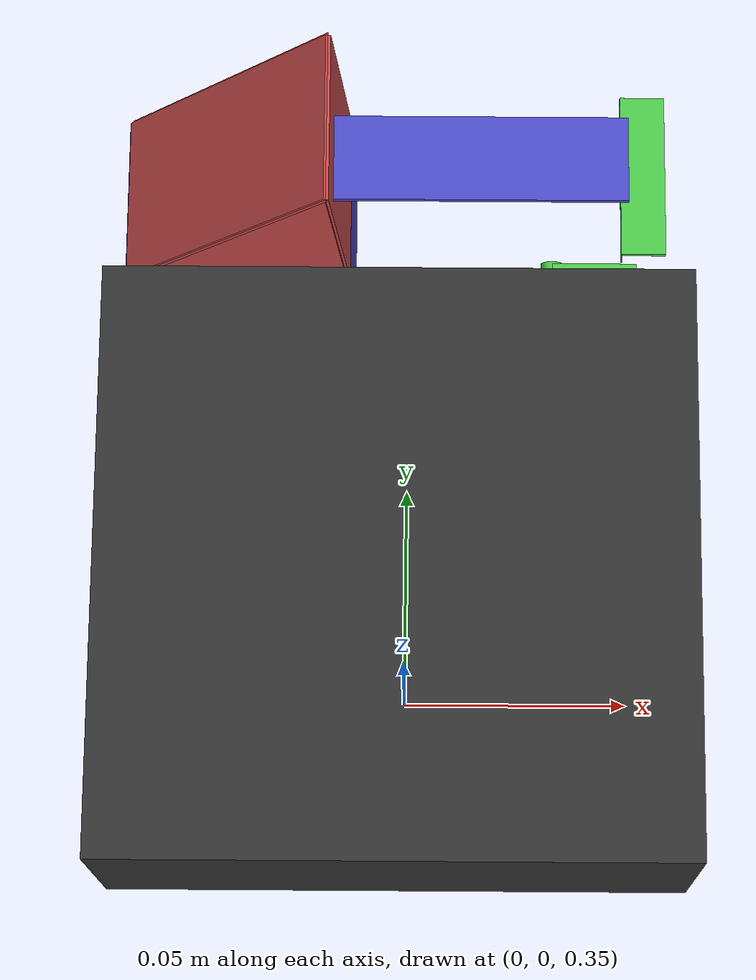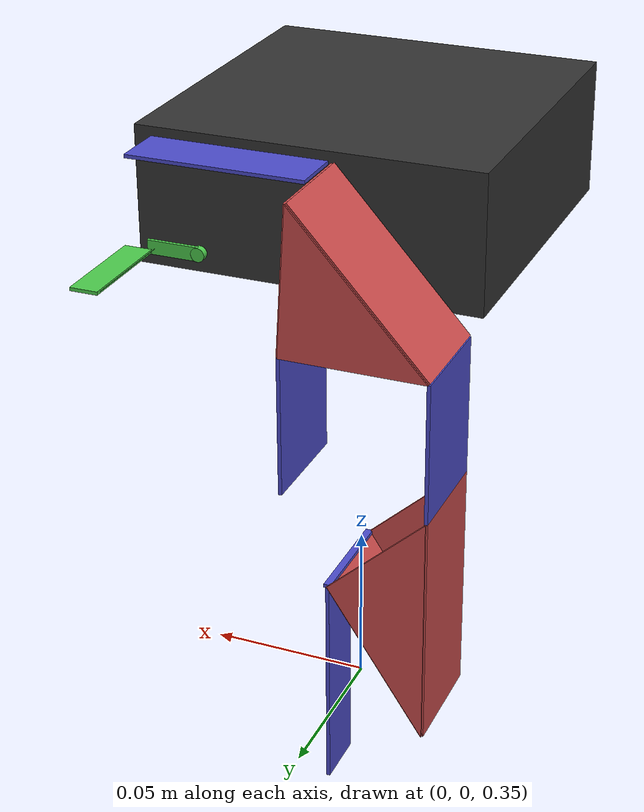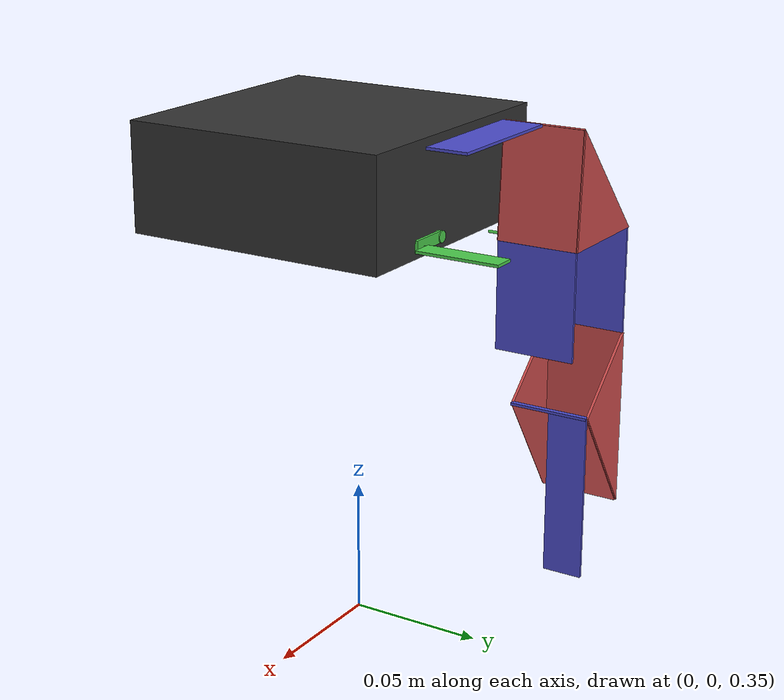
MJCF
<?xml version="1.0" encoding="UTF-8"?>
<mujoco model="Leg">
    <compiler inertiafromgeom="true" angle="radian"/>
    <option timestep="0.001" gravity="0 0 -9.81" integrator="RK4"/>
  <default>
    <joint damping="0.1" armature="0.01"/>
    <geom density="1000" friction="0.5 0.1 0.1"/>
  </default>

    <asset>
        <texture name="grid" type="2d" builtin="checker" width="512" height="512"
            rgb1="0.95 0.95 0.95" rgb2="1 1 1"/>
        <material name="floor_mat" texture="grid" texrepeat="50 50" specular="0.0"/>

        <!-- Slightly extruded triangular face to avoid flat QHull degeneracy -->
        <mesh name="tri_face_1"
            vertex="0 0 -0.0005    0.0401 0 -0.0005    0.03741 0.0414 -0.0005
                  0 0 0.0005  0.0401 0 0.0005  0.03741 0.0414 0.0005"/>
        <mesh name="tri_face_2"
            vertex="0 0 -0.0005    0.0657 0 -0.0005    0.02482 0.02701 -0.0005
                  0 0 0.0005  0.0657 0 0.0005  0.02482 0.02701 0.0005"/>
    </asset>

    <worldbody>
        <geom name="floor" type="plane" size="10 10 0.1" material="floor_mat" rgba="0.8 0.8 0.8 1"/>

        <body name="chassis" pos="0 0 0.5">
            <geom name="chassis_geom" type="box" size="0.05 0.05 0.02"
                pos="0 -0.01 0.02"
                rgba="0.2 0.2 0.2 1"/>

            <body name="motor_rotor" pos="0.027 0.05 0.0098">

                <joint name="motor_joint" type="hinge" axis="0 1 0" limited="false"/>

                <geom name="motor_geom" type="cylinder" size="0.002 0.001"
                    pos="0 0 0"
                    mass="0.1"
                    euler="1.57 0 0"
                    rgba="0.3 0.8 0.3 1"/>

                <geom name="motor_arm" type="box" size="0.0075 0.0005 0.002"
                    pos="0.0075 0.0001 0"
                    mass="0.1"
                    rgba="0.3 0.8 0.3 1"/>

                <geom name="motor_arm_ext" type="cylinder" size="0.0001 0.015"
                    pos="0.0125 0.0165 0"
                    mass="0.1"
                    euler="1.57 0 0"
                    rgba="0.3 0.8 0.3 1"/>

                <body name="motor_end_1" pos="0.0125 0.03 0">

                    <joint name="joint_6" type="hinge" axis="0 1 0" range="-180 180" limited="true"/>

                    <geom name="motor_end_geom_1" type="box" size="0.004 0.015 0.0005"
                        pos="0.004 -0.012 0"
                        mass="0.1"
                        rgba="0.3 0.8 0.3 1"/>
                </body>

                <body name="motor_end_2" pos="0.0125 0.03 0">

                    <joint name="joint_7" type="hinge" axis="0 1 0" range="-180 180" limited="true"/>

                    <geom name="motor_end_geom_2" type="box" size="0.004 0.015 0.0005"
                        pos="0.004 -0.012 0"
                        rgba="0.3 0.8 0.3 1"/>
                </body>

            </body>

            <body name="hollow_wedge_1" pos="-0.05 0.0515 0" >

                <joint name="rotatory" type="hinge" axis="0 1 0" pos="0.038 0 0.005" range="-180 180" limited="true"/>

                <geom name="rect_left" type="box" size="0.0279 0.015 0.0005"
                    pos="0.0187 0.015 0.0207"
                    euler="0 -0.836 0"
                    rgba="0.8 0.3 0.3 1"/>

                <geom name="rect_right" type="box" size="0.02075 0.015 0.0005"
                    pos="0.03875 0.015 0.0207"
                    euler="0 1.506 0"
                    rgba="0.8 0.3 0.3 1"/>

                <geom name="tri_front" type="mesh" mesh="tri_face_1"
                    pos="0 0 0"
                    euler="1.57 0 0"
                    rgba="0.8 0.3 0.3 1"/>

                <geom name="tri_back" type="mesh" mesh="tri_face_1"
                    pos="0 0.03 0"
                    euler="1.57 0 0"
                    rgba="0.8 0.3 0.3 1"/>

                <geom name = "axil" type="cylinder" size="0.0005 0.005"
                    pos="0.038 0 0.002"
                    euler="1.57 0 0"
                    rgba="0.3 0.8 0.3 1"/>

                <body name="link_0" pos="0.0401 0.015 0" axisangle="0 1 0 1.57">

                    <joint name="joint_0" type="hinge" axis="0 1 0" range="-180 180" limited="true"/>

                    <geom name="link_0_geom" type="box" size="0.0197 0.015 0.0005"
                        pos="0.0197 0 0"
                        rgba="0.3 0.3 0.8 1"/>
                </body>

                <body name="link_3" pos="0.03875 0.0075 0.0414">

                    <joint name="joint_4" type="hinge" axis="0 1 0" range="-180 180" limited="true"/>

                    <geom name="link_3_geom" type="box" size="0.025 0.0075 0.0005"
                        pos="0.025 0 0"
                        rgba="0.3 0.3 0.8 1"/>
                </body>

                <body name="link_1" pos="0 0.015 0" axisangle="0 1 0 1.57">

                    <joint name="joint_1" type="hinge" axis="0 1 0" range="-180 180" limited="true"/>

                    <geom name="link_1_geom" type="box" size="0.0197 0.015 0.0005"
                        pos="0.0197 0 0"
                        density="10"
                        rgba="0.3 0.3 0.8 1"/>

                    <body name="hollow_wedge_2" pos="0.0394 0 0">

                        <joint name="joint_2" type="hinge" axis="0 1 0" range="-180 180" limited="true"/>

                        <geom name="rect_left_2" type="box" size="0.03285 0.015 0.0005"
                            pos="0.03285 0 0"
                            euler="0 0 0"
                            rgba="0.8 0.3 0.3 1"/>

                        <geom name="rect_right_2" type="box" size="0.0245 0.015 0.0005"
                            pos="0.0452 0 0.0135"
                            euler="0 0.584 0"
                            rgba="0.8 0.3 0.3 1"/>

                        <geom name="tri_front_2" type="mesh" mesh="tri_face_2"
                            pos="0 0.015 0"
                            euler="1.57 0 0"
                            rgba="0.8 0.3 0.3 1"/>

                        <geom name="tri_back_2" type="mesh" mesh="tri_face_2"
                            pos="0 -0.015 0"
                            euler="1.57 0 0"
                            rgba="0.8 0.3 0.3 1"/>

                        <body name="link_5" pos="0.02482 0 0.02703">

                            <joint name="joint_5" type="hinge" axis="0 1 0" range="-180 180" limited="true"/>

                            <geom name="link_5_geom" type="box" size="0.03095 0.0075 0.0005"
                                pos="0.03095 0.0075 0"
                                rgba="0.3 0.3 0.8 1"/>
                        </body>

                        <body name="link_2" pos="0.02482 0 0.02703" axisangle="0 1 0 -1.57">

                            <joint name="joint_3" type="hinge" axis="0 1 0" range="-180 180" limited="true"/>

                            <geom name="link_2_geom" type="box" size="0.001 0.015 0.0005"
                                pos="0 0 0"
                                rgba="0.3 0.3 0.8 1"/>
                        </body>
                    </body>
                </body>
            </body>
        </body>

    <camera name="cam" pos="0.1 -0.15 0.6" euler="0 0 0"/>
    </worldbody>
    <equality>
    <weld name="weld1" active="true"
        body1="link_0" body2="link_2"
        relpose="0.0393 0 0 0 1 0 0"
        anchor="0 0 0"/>
    <weld name="weld2" active="true"
        body1="link_3" body2="motor_end_1"
        relpose="0.05 0 0 1 0 0 0"
        anchor="0 0 0"/>
    <weld name="weld3" active="true"
        body1="link_5" body2="motor_end_2"
        relpose="0.0619 0 0 1 0 0 0"
        anchor="0 0 0"/>
  </equality>

  <actuator>
    <!-- Drive the primary motor hinge -->
    <velocity name="vact" joint="motor_joint" kv="5" ctrlrange="-20 20"/>
  </actuator>

</mujoco>
